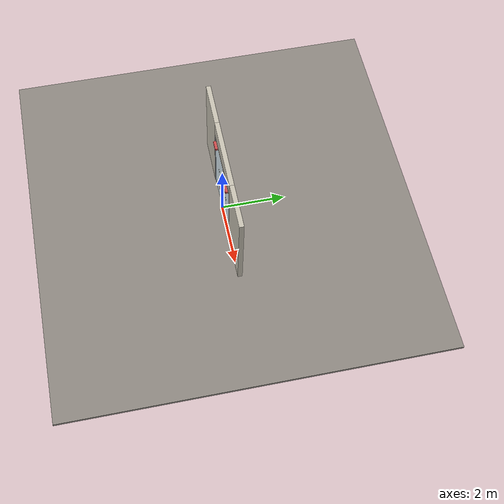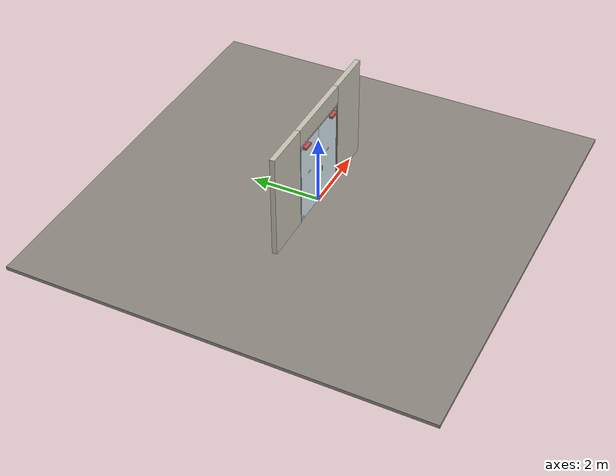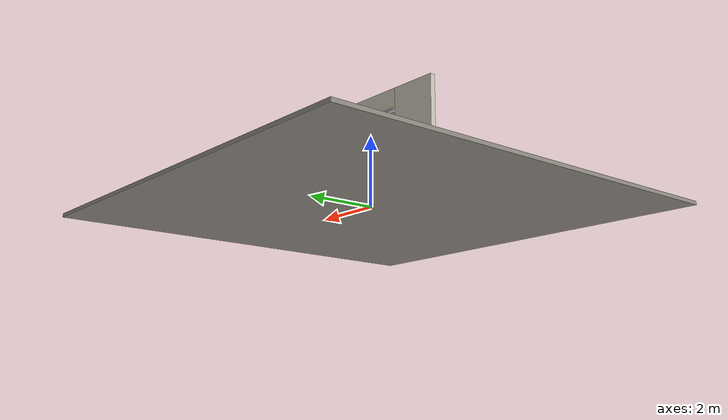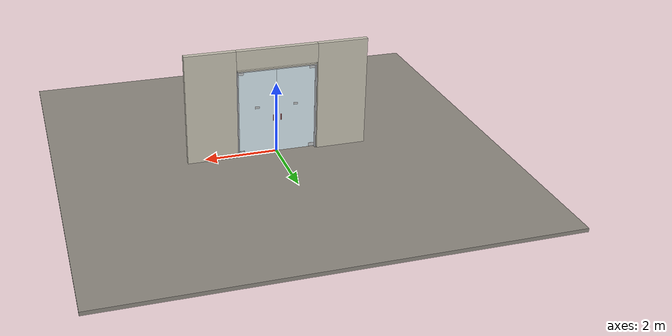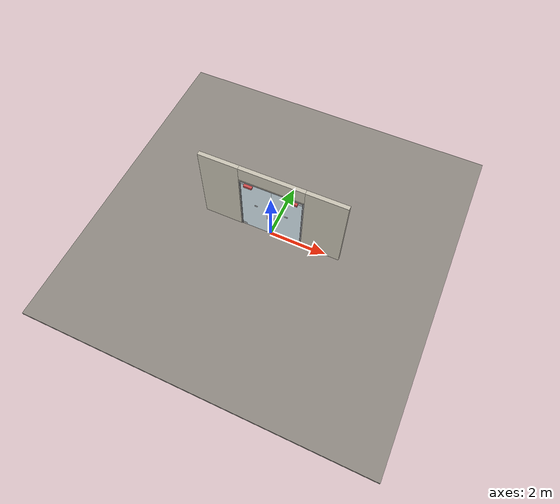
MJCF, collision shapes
<?xml version="1.0" ?>
<mujoco model="db0346_swing_double_full">
  <compiler angle="radian" meshdir="../../hardware" texturedir="../../textures" autolimits="true" inertiafromgeom="false"/>
  <option timestep="0.002" integrator="implicitfast" cone="elliptic" impratio="10" noslip_iterations="3">
    <flag multiccd="enable"/>
  </option>
  <size memory="16M"/>
  <default>
    <geom condim="4" solref="0.005 1" solimp="0.95 0.99 0.001"/>
    <joint solreflimit="0.005 1" solimplimit="0.95 0.99 0.001"/>
    <tendon solreflimit="0.005 1"/>
    <equality solref="0.002 1"/>
  </default>
  <visual>
    <headlight ambient="0.4 0.4 0.4" diffuse="0.7 0.7 0.7" specular="0.2 0.2 0.2"/>
    <quality shadowsize="4096"/>
    <map znear="0.01" zfar="60"/>
  </visual>
  <asset>
    <mesh name="closer_body_fdc4667657" file="closer_body_fdc4667657.obj"/>
    <mesh name="pull_1e5d69a91a" file="pull_1e5d69a91a.obj"/>
    <material name="mat_floor" rgba="0.55 0.53 0.5 1" specular="0.2" shininess="0.15" reflectance="0"/>
    <material name="mat_wall" rgba="0.78 0.76 0.7 1" specular="0.2" shininess="0.1" reflectance="0"/>
    <material name="mat_leaf_a" rgba="0.85 0.92 0.95 0.25" specular="0.2" shininess="0.95" reflectance="0.1"/>
    <material name="mat_glass_leaf" rgba="0.85 0.92 0.95 0.25" specular="0.2" shininess="0.95" reflectance="0.1"/>
    <material name="mat_patch" rgba="0.75 0.76 0.77 1" specular="0.8" shininess="0.65" reflectance="0.4"/>
    <material name="mat_hinge" rgba="0.65 0.66 0.68 1" specular="0.74" shininess="0.5" reflectance="0.36"/>
    <material name="mat_op_stainless" rgba="0.75 0.76 0.77 1" specular="0.8" shininess="0.65" reflectance="0.4"/>
    <material name="mat_closer" rgba="0.22 0.17 0.13 1" specular="0.8" shininess="0.6" reflectance="0.4"/>
    <material name="mat_sign" rgba="0.75 0.76 0.77 1" specular="0.8" shininess="0.65" reflectance="0.4"/>
    <material name="mat_leaf_b" rgba="0.85 0.92 0.95 0.25" specular="0.2" shininess="0.95" reflectance="0.1"/>
    <material name="mat_frame" rgba="0.8 0.81 0.83 1" specular="0.8" shininess="0.6" reflectance="0.4"/>
    <texture name="skybox" type="skybox" builtin="gradient" rgb1="0.6 0.7 0.85" rgb2="0.9 0.92 0.95" width="256" height="256"/>
  </asset>
  <worldbody>
    <light name="sun" pos="1.5 -2.5 4" dir="-0.3 0.5 -0.8" directional="true" diffuse="0.8 0.8 0.8" specular="0.3 0.3 0.3" castshadow="true"/>
    <light name="fill" pos="-1.5 2.5 3" dir="0.3 -0.5 -0.7" directional="true" diffuse="0.35 0.35 0.4" castshadow="false"/>
    <camera name="robot_view" pos="0 -2.876313 2.043887" xyaxes="1 0 0 0 0.26963 0.962964" fovy="52"/>
    <camera name="far_view" pos="0 2.969313 2.043887" xyaxes="-1 0 0 0 -0.26963 0.962964" fovy="52"/>
    <camera name="iso" pos="-2.221337 -2.408663 2.511538" xyaxes="0.741536 -0.670913 0 0.242917 0.268487 0.932151" fovy="46"/>
    <camera name="detail_handle" pos="0.0735 -0.866 1.32" xyaxes="0.97561 0.219512 0 -0.070934 0.315262 0.94635" fovy="38"/>
    <geom name="floor" type="box" size="6 6 0.05" pos="0 0 -0.05" material="mat_floor" group="0" contype="1" conaffinity="1" friction="0.8 0.005 0.0001" density="2400"/>
    <geom name="wall_left" type="box" size="0.69175 0.0725 1.5255" pos="-1.80825 0.0465 1.5255" material="mat_wall" group="0" contype="1" conaffinity="1" friction="0.6 0.005 0.0001" density="800"/>
    <geom name="wall_right" type="box" size="0.69175 0.0725 1.5255" pos="1.80825 0.0465 1.5255" material="mat_wall" group="0" contype="1" conaffinity="1" friction="0.6 0.005 0.0001" density="800"/>
    <geom name="wall_header" type="box" size="1.1165 0.0725 0.2625" pos="0 0.0465 2.7885" material="mat_wall" group="0" contype="1" conaffinity="1" friction="0.6 0.005 0.0001" density="800"/>
    <geom name="jamb_l" type="box" size="0.0095 0.0725 1.2255" pos="-1.081 0.0465 1.2255" material="mat_frame" group="0" contype="1" conaffinity="1" friction="0.6 0.005 0.0001" density="300"/>
    <geom name="jamb_r" type="box" size="0.0095 0.0725 1.2255" pos="1.081 0.0465 1.2255" material="mat_frame" group="0" contype="1" conaffinity="1" friction="0.6 0.005 0.0001" density="300"/>
    <geom name="jamb_head" type="box" size="1.0905 0.0725 0.0095" pos="0 0.0465 2.4605" material="mat_frame" group="0" contype="1" conaffinity="1" friction="0.6 0.005 0.0001" density="300"/>
    <geom name="head_stud" type="box" size="1.0905 0.0725 0.015" pos="0 0.0465 2.485" material="mat_wall" group="0" contype="1" conaffinity="1" friction="0.6 0.005 0.0001" density="500"/>
    <site name="approach_point" pos="0 -1.5 0" quat="1 0 0 0" size="0.05" rgba="0.2 0.9 0.2 0.5" group="4"/>
    <site name="goal_point" pos="0 1.5 0" quat="1 0 0 0" size="0.05" rgba="0.2 0.9 0.2 0.5" group="4"/>
    <site name="door_plane_center" pos="0 0 1.2255" quat="1 0 0 0" size="0.02" rgba="0.2 0.9 0.2 0.5" group="4"/>
    <site name="approach_point_2" pos="0 -1.5 0" quat="1 0 0 0" size="0.05" rgba="0.2 0.9 0.2 0.5" group="4"/>
    <site name="goal_point_2" pos="0 1.5 0" quat="1 0 0 0" size="0.05" rgba="0.2 0.9 0.2 0.5" group="4"/>
    <site name="door_plane_center_2" pos="0 0 1.2255" quat="1 0 0 0" size="0.02" rgba="0.2 0.9 0.2 0.5" group="4"/>
    <site name="approach_point_3" pos="0 -1.5 0" quat="1 0 0 0" size="0.05" rgba="0.2 0.9 0.2 0.5" group="4"/>
    <site name="goal_point_3" pos="0 1.5 0" quat="1 0 0 0" size="0.05" rgba="0.2 0.9 0.2 0.5" group="4"/>
    <site name="door_plane_center_3" pos="0 0 1.2255" quat="1 0 0 0" size="0.02" rgba="0.2 0.9 0.2 0.5" group="4"/>
    <body name="leaf_a" pos="-1.0715 0 0">
      <inertial pos="0.319062 -0.037065 1.927629" mass="44.1712" quat="-0.499368 0.478473 0.506834 0.514602" diaginertia="2.690584296 20.881948103 23.495245536"/>
      <joint name="leaf_a_hinge" type="hinge" axis="0 0 -1" pos="0.003 -0.013 0" limited="true" range="0 1.745329" damping="12.570702" frictionloss="1.019136" stiffness="16.170142" springref="-1.688297" armature="0.02"/>
      <geom name="leaf_a_glass" type="box" size="0.5335 0.006 1.219" pos="0.5365 0 1.228" material="mat_glass_leaf" group="0" contype="1" conaffinity="1" friction="0.4 0.005 0.0001" density="1"/>
      <geom name="leaf_a_patch_bot" type="box" size="0.08 0.014 0.05" pos="0.083 0 0.069" material="mat_patch" group="1" contype="0" conaffinity="0" density="1"/>
      <geom name="leaf_a_patch_top" type="box" size="0.08 0.014 0.05" pos="0.083 0 2.387" material="mat_patch" group="1" contype="0" conaffinity="0" density="1"/>
      <geom name="hinge_continuous" type="cylinder" size="0.0136 1.209" pos="0.003 -0.013 1.228" material="mat_hinge" group="1" contype="0" conaffinity="0" density="2700"/>
      <geom name="leaf_a_pull_n" type="mesh" mesh="pull_1e5d69a91a" pos="0.965 -0.006 1.04" quat="0.707107 0.707107 0 0" material="mat_op_stainless" group="1" contype="0" conaffinity="0" density="3000"/>
      <geom name="leaf_a_pull_col_n" type="capsule" size="0.0095 0.08" pos="0.965 -0.066 1.04" material="mat_op_stainless" group="3" contype="1" conaffinity="1" rgba="0.8 0.3 0.3 0.25" friction="0.7 0.01 0.0001" density="3000"/>
      <geom name="leaf_a_pull_p" type="mesh" mesh="pull_1e5d69a91a" pos="0.965 0.006 1.04" quat="-0.707107 0.707107 0 0" material="mat_op_stainless" group="1" contype="0" conaffinity="0" density="3000"/>
      <geom name="leaf_a_pull_col_p" type="capsule" size="0.0095 0.08" pos="0.965 0.066 1.04" material="mat_op_stainless" group="3" contype="1" conaffinity="1" rgba="0.8 0.3 0.3 0.25" friction="0.7 0.01 0.0001" density="3000"/>
      <geom name="closer_body" type="mesh" mesh="closer_body_fdc4667657" pos="0.3 -0.006 2.358" quat="0.707107 0.707107 0 0" material="mat_closer" group="1" contype="0" conaffinity="0" density="2000"/>
      <geom name="closer_body_col" type="box" size="0.145 0.05 0.035" pos="0.3 -0.056 2.358" material="mat_closer" group="3" contype="1" conaffinity="1" rgba="0.8 0.3 0.3 0.25" friction="0.6 0.005 0.0001" density="2000"/>
      <geom name="sign_push" type="box" size="0.06 0.001 0.03" pos="0.5365 0.007 1.359" material="mat_sign" group="2" contype="0" conaffinity="0" density="7900"/>
      <geom name="sign_pull" type="box" size="0.06 0.001 0.03" pos="0.5365 -0.007 1.359" material="mat_sign" group="2" contype="0" conaffinity="0" density="7900"/>
      <site name="leaf_a_pull_grip_n" pos="0.965 -0.066 1.04" quat="1 0 0 0" size="0.012" rgba="0.2 0.9 0.2 0.5" group="4"/>
      <site name="leaf_a_pull_grip_p" pos="0.965 0.066 1.04" quat="1 0 0 0" size="0.012" rgba="0.2 0.9 0.2 0.5" group="4"/>
      <site name="leaf_a_edge_mid" pos="1.07 0 1.219" quat="1 0 0 0" size="0.02" rgba="0.2 0.9 0.2 0.5" group="4"/>
    </body>
    <body name="leaf_b" pos="1.0715 0 0">
      <inertial pos="-0.319062 -0.037065 1.927629" mass="44.1712" quat="0.514602 -0.506834 -0.478473 -0.499368" diaginertia="2.690584296 20.881948103 23.495245536"/>
      <joint name="leaf_b_hinge" type="hinge" axis="0 0 1" pos="-0.003 -0.013 0" limited="true" range="0 1.745329" damping="12.570702" frictionloss="1.019136" stiffness="16.170142" springref="-1.688297" armature="0.02"/>
      <geom name="leaf_b_glass" type="box" size="0.5335 0.006 1.219" pos="-0.5365 0 1.228" material="mat_glass_leaf" group="0" contype="1" conaffinity="1" friction="0.4 0.005 0.0001" density="1"/>
      <geom name="leaf_b_patch_bot" type="box" size="0.08 0.014 0.05" pos="-0.083 0 0.069" material="mat_patch" group="1" contype="0" conaffinity="0" density="1"/>
      <geom name="leaf_b_patch_top" type="box" size="0.08 0.014 0.05" pos="-0.083 0 2.387" material="mat_patch" group="1" contype="0" conaffinity="0" density="1"/>
      <geom name="hinge_continuous_2" type="cylinder" size="0.0136 1.209" pos="-0.003 -0.013 1.228" material="mat_hinge" group="1" contype="0" conaffinity="0" density="2700"/>
      <geom name="leaf_b_pull_n" type="mesh" mesh="pull_1e5d69a91a" pos="-0.965 -0.006 1.04" quat="0 0 -0.707107 0.707107" material="mat_op_stainless" group="1" contype="0" conaffinity="0" density="3000"/>
      <geom name="leaf_b_pull_col_n" type="capsule" size="0.0095 0.08" pos="-0.965 -0.066 1.04" material="mat_op_stainless" group="3" contype="1" conaffinity="1" rgba="0.8 0.3 0.3 0.25" friction="0.7 0.01 0.0001" density="3000"/>
      <geom name="leaf_b_pull_p" type="mesh" mesh="pull_1e5d69a91a" pos="-0.965 0.006 1.04" quat="0 0 0.707107 0.707107" material="mat_op_stainless" group="1" contype="0" conaffinity="0" density="3000"/>
      <geom name="leaf_b_pull_col_p" type="capsule" size="0.0095 0.08" pos="-0.965 0.066 1.04" material="mat_op_stainless" group="3" contype="1" conaffinity="1" rgba="0.8 0.3 0.3 0.25" friction="0.7 0.01 0.0001" density="3000"/>
      <geom name="closer_body_2" type="mesh" mesh="closer_body_fdc4667657" pos="-0.3 -0.006 2.358" quat="0 0 -0.707107 0.707107" material="mat_closer" group="1" contype="0" conaffinity="0" density="2000"/>
      <geom name="closer_body_col_2" type="box" size="0.145 0.05 0.035" pos="-0.3 -0.056 2.358" material="mat_closer" group="3" contype="1" conaffinity="1" rgba="0.8 0.3 0.3 0.25" friction="0.6 0.005 0.0001" density="2000"/>
      <geom name="sign_push_2" type="box" size="0.06 0.001 0.03" pos="-0.5365 0.007 1.359" material="mat_sign" group="2" contype="0" conaffinity="0" density="7900"/>
      <geom name="sign_pull_2" type="box" size="0.06 0.001 0.03" pos="-0.5365 -0.007 1.359" material="mat_sign" group="2" contype="0" conaffinity="0" density="7900"/>
      <site name="leaf_b_pull_grip_n" pos="-0.965 -0.066 1.04" quat="1 0 0 0" size="0.012" rgba="0.2 0.9 0.2 0.5" group="4"/>
      <site name="leaf_b_pull_grip_p" pos="-0.965 0.066 1.04" quat="1 0 0 0" size="0.012" rgba="0.2 0.9 0.2 0.5" group="4"/>
      <site name="leaf_b_edge_mid" pos="-1.07 0 1.219" quat="1 0 0 0" size="0.02" rgba="0.2 0.9 0.2 0.5" group="4"/>
    </body>
  </worldbody>
  <sensor>
    <jointpos name="leaf_a_hinge_pos" joint="leaf_a_hinge"/>
    <jointvel name="leaf_a_hinge_vel" joint="leaf_a_hinge"/>
    <jointpos name="leaf_b_hinge_pos" joint="leaf_b_hinge"/>
    <jointvel name="leaf_b_hinge_vel" joint="leaf_b_hinge"/>
  </sensor>
</mujoco>
